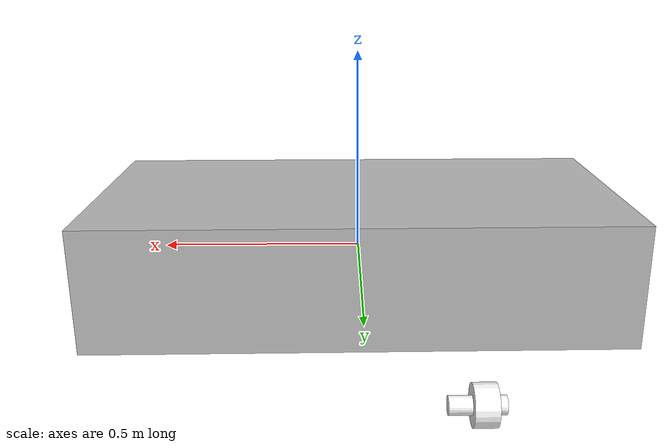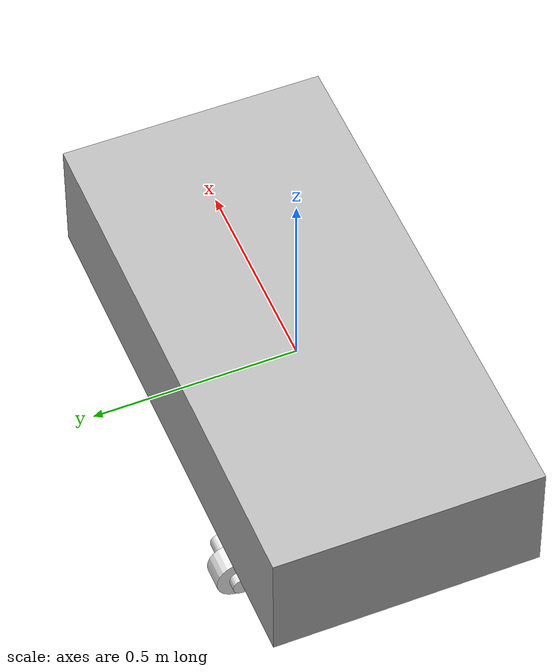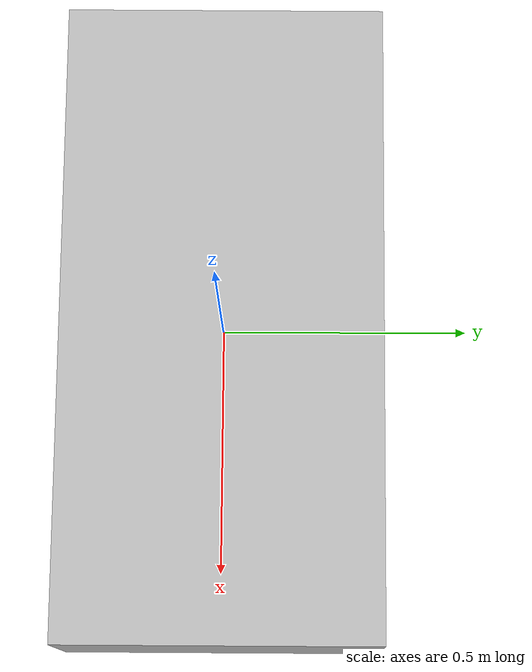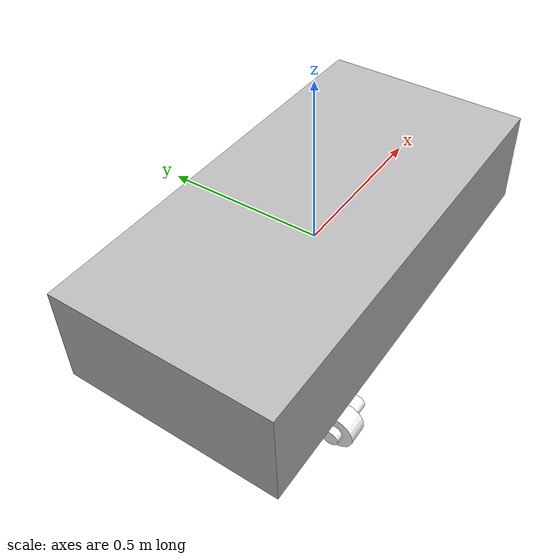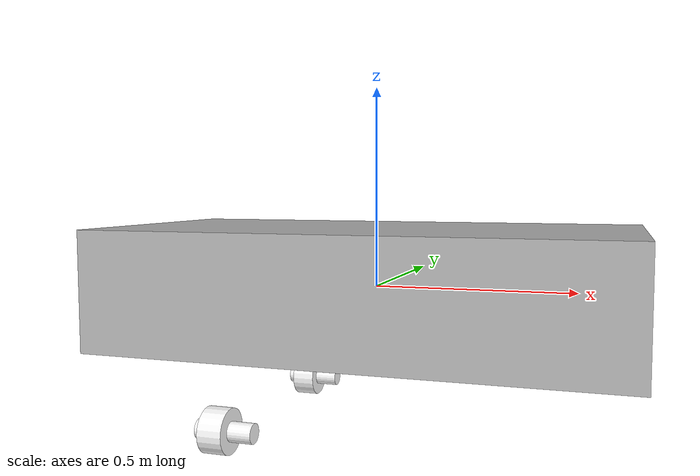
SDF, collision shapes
<?xml version="1.0"?>
<sdf version="1.6">
  <model name="usv2">
    <link name="base_link">
      <inertial>
        <pose>0.2 0 0 0 0 0</pose>
        <mass>45</mass>
        <inertia>
          <ixx>0.5666666666666668</ixx>
          <ixy>0</ixy>
          <ixz>0</ixz>
          <iyy>1.0416666666666667</iyy>
          <iyz>0</iyz>
          <izz>1.5416666666666667</izz>
        </inertia>
      </inertial>
      <visual name="visual">
        <pose>-0.3 0 0 0 0 0</pose>
        <geometry>
          <mesh>
            <uri>file://vtec_s3/meshes/vtec_s3.dae</uri>
	    <scale>0.1 0.1 0.1</scale>
          </mesh>
        </geometry>
      </visual>

      <collision name="Coll">
	  <pose>0 0 0 0 0 0</pose>
	  <geometry>
	    <box>
	      <size>1.3 0.65 0.3</size>
	    </box>
	  </geometry>
	</collision>
    </link>

    <!-- Left thruster housing -->
    <link name="left_housing_link">
      <inertial>
        <pose>-0.3 0.28 -0.32 0 0 0</pose>
        <mass>1</mass>
        <inertia>
          <ixx>0.0020290833333333333</ixx>
          <ixy>0</ixy>
          <ixz>0</ixz>
          <iyy>0.002408333333333333</iyy>
          <iyz>0</iyz>
          <izz>0.0006874166666666666</izz>
        </inertia>
      </inertial>

      <visual name="left_housing_visual">
        <pose>-0.3 0.28 -0.32 0 0 0</pose>
        <geometry>
          <mesh>
            <uri>file://usv2/meshes/housing.dae</uri>
          </mesh>
        </geometry>
        <material>
          <diffuse>1.0 1.0 1.0</diffuse>
          <specular>1.0 1.0 1.0</specular>
          <pbr>
            <metal>
              <albedo_map>file://usv2/materials/textures/Thruster_Albedo.png</albedo_map>
              <roughness_map>file://usv2/materials/textures/Thruster_Roughness.png</roughness_map>
            </metal>
          </pbr>
        </material>
      </visual>

      <collision name="Cylinder263d">
        <pose>-0.2833463 0.27986701 -0.32 1.5708 0.0 -1.5708</pose>
        <geometry>
          <cylinder>
            <length>0.14376</length>
            <radius>0.0243692</radius>
          </cylinder>
        </geometry>
      </collision>
    </link>

    <!-- Left propeller -->
    <link name="left_prop_link">
      <inertial>
        <pose>-0.300872875 0.279867016 -0.32 1.5708 0.0 -1.5708</pose>
        <mass>0.1</mass>
        <inertia>
          <ixx>0.00010562499999999999</ixx>
          <ixy>0</ixy>
          <ixz>0</ixz>
          <iyy>0.00010562499999999999</iyy>
          <iyz>0</iyz>
          <izz>0.00015125000000000002</izz>
        </inertia>
      </inertial>
      <visual name="left_prop_visual">
        <pose>-0.3 0.28 -0.32 0 0 0</pose>
        <geometry>
          <mesh>
            <uri>file://usv2/meshes/prop.dae</uri>
          </mesh>
        </geometry>
        <material>
          <diffuse>1.0 1.0 1.0</diffuse>
          <specular>1.0 1.0 1.0</specular>
          <pbr>
            <metal>
              <albedo_map>file://usv2/materials/textures/Thruster_Albedo.png</albedo_map>
              <roughness_map>file://usv2/materials/textures/Thruster_Roughness.png</roughness_map>
            </metal>
          </pbr>
        </material>
      </visual>

      <collision name="Cylinder262d">
        <pose>-0.300872875 0.279867016 -0.32 1.5708 0.0 -1.5708</pose>
        <geometry>
          <cylinder>
            <length>0.0608172</length>
            <radius>0.0553844</radius>
          </cylinder>
        </geometry>
      </collision>
    </link>

    <!-- Right thruster housing -->
    <link name="right_housing_link">
      <inertial>
        <pose>-0.3 -0.28 -0.32 0 0 0</pose>
        <mass>1</mass>
        <inertia>
          <ixx>0.0020290833333333333</ixx>
          <ixy>0</ixy>
          <ixz>0</ixz>
          <iyy>0.002408333333333333</iyy>
          <iyz>0</iyz>
          <izz>0.0006874166666666666</izz>
        </inertia>
      </inertial>
      <visual name="right_housing_visual">
        <pose>-0.3 -0.28 -0.32 0 0 0</pose>
        <geometry>
          <mesh>
            <uri>file://usv2/meshes/housing.dae</uri>
          </mesh>
        </geometry>
        <material>
          <diffuse>1.0 1.0 1.0</diffuse>
          <specular>1.0 1.0 1.0</specular>
          <pbr>
            <metal>
              <albedo_map>file://usv2/materials/textures/Thruster_Albedo.png</albedo_map>
              <roughness_map>file://usv2/materials/textures/Thruster_Roughness.png</roughness_map>
            </metal>
          </pbr>
        </material>
      </visual>

      <!-- Thruster collisions -->
      <collision name="Cylinder263i">
        <pose>-0.2833463 -0.27986701 -0.32 1.5708 0.0 -1.5708</pose>
        <geometry>
          <cylinder>
            <length>0.14376</length>
            <radius>0.0243692</radius>
          </cylinder>
        </geometry>
      </collision>
    </link>

    <!-- Right propeller -->
    <link name="right_prop_link">
      <inertial>
        <pose>-0.300872875 -0.279867016 -0.32 1.5708 0.0 -1.5708</pose>
        <mass>0.1</mass>
        <inertia>
          <ixx>0.00010562499999999999</ixx>
          <ixy>0</ixy>
          <ixz>0</ixz>
          <iyy>0.00010562499999999999</iyy>
          <iyz>0</iyz>
          <izz>0.00015125000000000002</izz>
        </inertia>
      </inertial>
      <visual name="right_prop_visual">
        <pose>-0.3 -0.28 -0.32 0 0 0</pose>
        <geometry>
          <mesh>
            <uri>file://usv2/meshes/prop.dae</uri>
          </mesh>
        </geometry>
        <material>
          <diffuse>1.0 1.0 1.0</diffuse>
          <specular>1.0 1.0 1.0</specular>
          <pbr>
            <metal>
              <albedo_map>file://usv2/materials/textures/Thruster_Albedo.png</albedo_map>
              <roughness_map>file://usv2/materials/textures/Thruster_Roughness.png</roughness_map>
            </metal>
          </pbr>
        </material>
      </visual>

      <collision name="Cylinder262i">
        <pose>-0.300872875 -0.279867016 -0.32 1.5708 0.0 -1.5708</pose>
        <geometry>
          <cylinder>
            <length>0.0608172</length>
            <radius>0.0553844</radius>
          </cylinder>
        </geometry>
      </collision>
    </link>

    <!-- Chassis-left engine joint -->
    <joint name="left_chasis_engine_joint" type="revolute">
      <axis>
        <xyz>0 0 1</xyz>
        <limit>
          <lower>0</lower>
          <upper>0</upper>
          <effort>10</effort>
          <velocity>10</velocity>
        </limit>
      </axis>
      <parent>base_link</parent>
      <child>left_housing_link</child>
    </joint>

    <!-- Left joint housing-propeller -->
    <joint name="left_engine_propeller_joint" type="revolute">
      <pose>-0.300872875 0.279867016 -0.32 1.5708 0.0 0</pose>
      <axis>
        <xyz>1 0 0</xyz>
        <limit>
          <effort>100</effort>
          <velocity>100</velocity>
        </limit>
        <dynamics>
          <friction>0.05</friction>
          <damping>0.05</damping>
        </dynamics>
      </axis>
      <parent>left_housing_link</parent>
      <child>left_prop_link</child>
    </joint>

    <!-- Chassis-right engine joint -->
    <joint name="right_chasis_engine_joint" type="revolute">
      <axis>
        <xyz>0 0 1</xyz>
        <limit>
          <lower>0</lower>
          <upper>0</upper>
          <effort>10</effort>
          <velocity>10</velocity>
        </limit>
      </axis>
      <parent>base_link</parent>
      <child>right_housing_link</child>
    </joint>

    <!-- Right joint housing-propeller -->
    <joint name="right_engine_propeller_joint" type="revolute">
      <pose>-0.300872875 -0.279867016 -0.32 1.5708 0.0 0</pose>
      <axis>
        <xyz>1 0 0</xyz>
        <limit>
          <effort>100</effort>
          <velocity>100</velocity>
        </limit>
        <dynamics>
          <friction>0.05</friction>
          <damping>0.05</damping>
        </dynamics>
      </axis>
      <parent>right_housing_link</parent>
      <child>right_prop_link</child>
    </joint>

    <!-- Left hull -->
    <plugin
      filename="libSurface.so"
      name="vrx::Surface">
      <link_name>base_link</link_name>
      <hull_length>1.15</hull_length>
      <hull_radius>0.12</hull_radius>
      <fluid_level>0.1</fluid_level>
      <points>
        <point>0.68 0.204338 -0.1552701</point>
        <point>-0.465 0.204338 -0.1552701</point>
      </points>
      <wavefield>
        <topic>/vrx/wavefield/parameters</topic>
      </wavefield>
    </plugin>

    <!-- Right hull -->
    <plugin
      filename="libSurface.so"
      name="vrx::Surface">
      <link_name>base_link</link_name>
      <hull_length>1.15</hull_length>
      <hull_radius>0.12</hull_radius>
      <fluid_level>0.1</fluid_level>
      <points>
        <point>0.68 -0.204338 -0.1552701 </point>
        <point>-0.465 -0.204338 -0.1552701 </point>
      </points>
      <wavefield>
        <topic>/vrx/wavefield/parameters</topic>
      </wavefield>
    </plugin>

    <plugin
      filename="libSimpleHydrodynamics.so"
      name="vrx::SimpleHydrodynamics">
      <link_name>base_link</link_name>
      <!-- Added mass -->
      <xDotU>0.0</xDotU>
      <yDotV>0.0</yDotV>
      <nDotR>0.0</nDotR>
      <!-- Linear and quadratic drag -->
      <xU>4.0</xU>
      <xUU>6.0</xUU>
      <yV>4.0</yV>
      <yVV>4.0</yVV>
      <zW>20.0</zW>
      <kP>12.0</kP>
      <kPP>24.0</kPP>
      <mQ>36.0</mQ>
      <mQQ>35.0</mQQ>
      <nR>32.0</nR>
      <nRR>32.0</nRR>
    </plugin>

    <plugin
      filename="gz-sim-thruster-system"
      name="gz::sim::systems::Thruster">
      <joint_name>left_engine_propeller_joint</joint_name>
      <thrust_coefficient>0.0001</thrust_coefficient>
      <fluid_density>1000</fluid_density>
      <propeller_diameter>0.1</propeller_diameter>
      <velocity_control>true</velocity_control>
    </plugin>

    <plugin
      filename="gz-sim-thruster-system"
      name="gz::sim::systems::Thruster">
      <joint_name>right_engine_propeller_joint</joint_name>
      <thrust_coefficient>0.0001</thrust_coefficient>
      <fluid_density>1000</fluid_density>
      <propeller_diameter>0.1</propeller_diameter>
      <velocity_control>true</velocity_control>
    </plugin>

    <plugin
      filename="gz-sim-odometry-publisher-system"
      name="gz::sim::systems::OdometryPublisher">
      <odom_frame>world</odom_frame>
      <odom_covariance_topic>/gz_sim2/odometry</odom_covariance_topic>
    </plugin>

    <!-- Hydrodynamics plugin -->
    <plugin
      filename="gz-waves1-hydrodynamics-system"
      name="gz::sim::systems::Hydrodynamics">

      <enable>usv2::base_link</enable>

      <hydrodynamics>
        <damping_on>1</damping_on>
        <viscous_drag_on>1</viscous_drag_on>
        <pressure_drag_on>1</pressure_drag_on>

        <!-- Linear and Angular Damping -->
        <cDampL1>1.0E-6</cDampL1>
        <cDampL2>1.0E-6</cDampL2>
        <cDampR1>1.0E-6</cDampR1>
        <cDampR2>1.0E-6</cDampR2>

        <!-- 'Pressure' Drag -->
        <cPDrag1>1.0E+2</cPDrag1>
        <cPDrag2>1.0E+2</cPDrag2>
        <fPDrag>0.4</fPDrag>
        <cSDrag1>1.0E+2</cSDrag1>
        <cSDrag2>1.0E+2</cSDrag2>
        <fSDrag>0.4</fSDrag>
        <vRDrag>1.0</vRDrag>
      </hydrodynamics>

      <!-- Control visibility of markers -->
      <markers>
        <update_rate>1</update_rate>
        <water_patch>0</water_patch>
        <waterline>0</waterline>
        <underwater_surface>0</underwater_surface>
      </markers>
    </plugin>

  </model>
</sdf>
